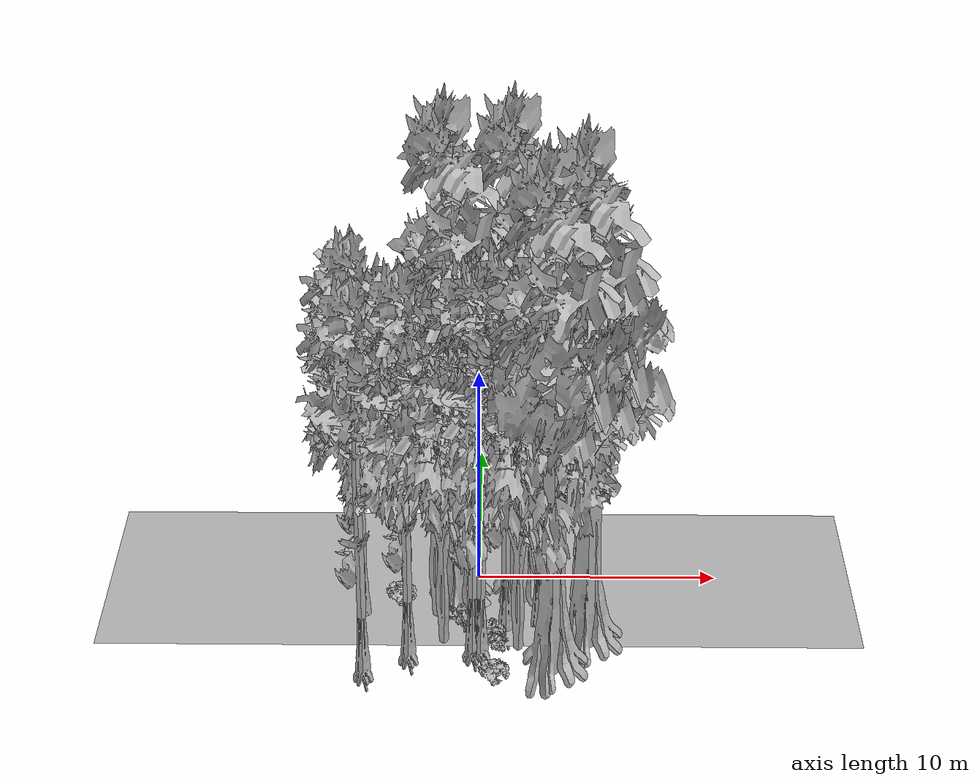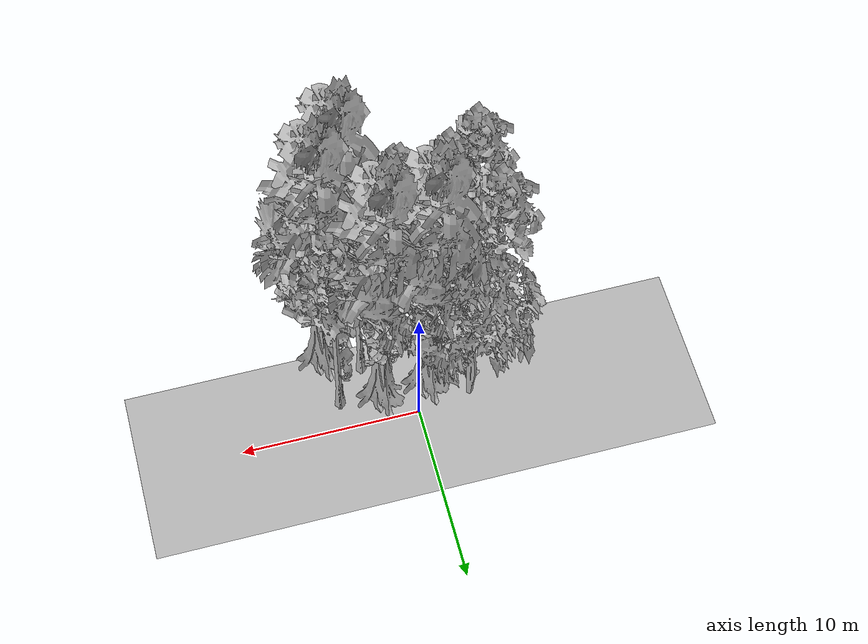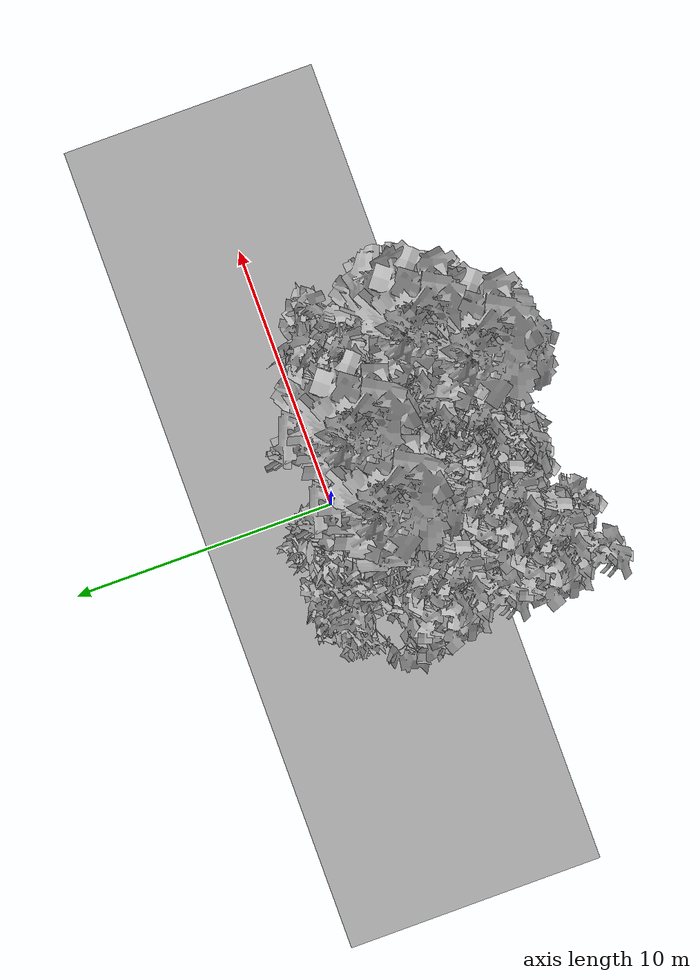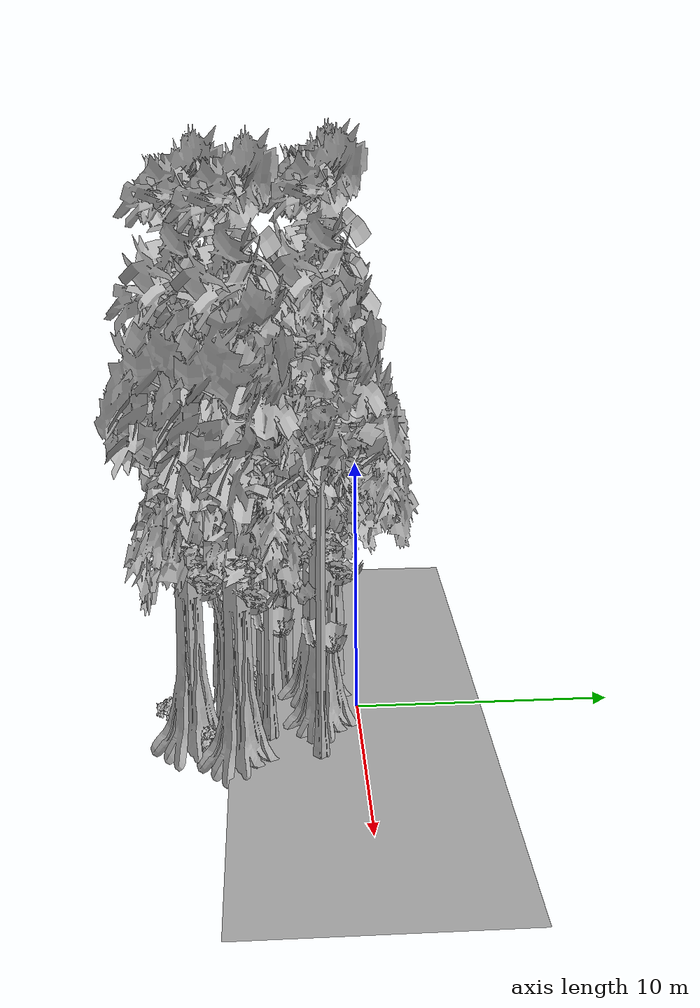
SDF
<sdf version="1.7">
 <world name="default">
  <model name="ground_plane">
   <static>1</static>
   <link name="link">
    <collision name="collision">
     <geometry><plane><normal>0 0 1</normal><size>100 100</size></plane></geometry>
     <surface><contact><ode><min_depth>0.01</min_depth><max_vel>0</max_vel></ode></contact></surface>
    </collision>
    <visual name="grass">
     <cast_shadows>0</cast_shadows>
     <geometry>
      <mesh>
       <scale>0.5814285714285714 0.18142857142857144 0.1</scale>
       <uri>file://grass_plane/meshes/grass_plane.dae</uri>
      </mesh>
     </geometry>
    </visual>
   </link>
  </model>
  <model name="Tree 1">
   <static>1</static>
   <pose>0.11113853436378918 -5.2022430370179435 0 1.57079 -0 0</pose>
   <link name="link">
    <collision name="collision">
     <geometry><mesh><scale>3.5 5 3.5</scale><uri>model://tree_9/meshes/tree_9.obj</uri></mesh></geometry>
    </collision>
    <visual name="visual">
     <geometry><mesh><scale>3.5 5 3.5</scale><uri>model://tree_9/meshes/tree_9.obj</uri></mesh></geometry>
    </visual>
   </link>
  </model>
  <model name="Tree 21">
   <static>1</static>
   <pose>1.1179065578854477 -3.695320356030459 0 1.57079 -0 0</pose>
   <link name="link">
    <collision name="collision">
     <geometry><mesh><scale>3.5 5 3.5</scale><uri>model://tree_9/meshes/tree_9.obj</uri></mesh></geometry>
    </collision>
    <visual name="visual">
     <geometry><mesh><scale>3.5 5 3.5</scale><uri>model://tree_9/meshes/tree_9.obj</uri></mesh></geometry>
    </visual>
   </link>
  </model>
  <model name="Tree 31">
   <static>1</static>
   <pose>-1.4957072366649413 -4.576129310586122 0 1.57079 -0 0</pose>
   <link name="link">
    <collision name="collision">
     <geometry><mesh><scale>3.5 5 3.5</scale><uri>model://tree_2/meshes/tree_2.obj</uri></mesh></geometry>
    </collision>
    <visual name="visual">
     <geometry><mesh><scale>3.5 5 3.5</scale><uri>model://tree_2/meshes/tree_2.obj</uri></mesh></geometry>
    </visual>
   </link>
  </model>
  <model name="Tree 40">
   <static>1</static>
   <pose>-4.594382148344302 -6.544546056844624 0 1.57079 -0 0</pose>
   <link name="link">
    <collision name="collision">
     <geometry><mesh><scale>3.5 5 3.5</scale><uri>model://tree_9/meshes/tree_9.obj</uri></mesh></geometry>
    </collision>
    <visual name="visual">
     <geometry><mesh><scale>3.5 5 3.5</scale><uri>model://tree_9/meshes/tree_9.obj</uri></mesh></geometry>
    </visual>
   </link>
  </model>
  <model name="Tree 60">
   <static>1</static>
   <pose>2.468616328200504 -3.4058697029659157 0 1.57079 -0 0</pose>
   <link name="link">
    <collision name="collision">
     <geometry><mesh><scale>3.5 5 3.5</scale><uri>model://tree_9/meshes/tree_9.obj</uri></mesh></geometry>
    </collision>
    <visual name="visual">
     <geometry><mesh><scale>3.5 5 3.5</scale><uri>model://tree_9/meshes/tree_9.obj</uri></mesh></geometry>
    </visual>
   </link>
  </model>
  <model name="Tree 116">
   <static>1</static>
   <pose>2.9401466995521304 -6.251154883107754 0 1.57079 -0 0</pose>
   <link name="link">
    <collision name="collision">
     <geometry><mesh><scale>3.5 5 3.5</scale><uri>model://tree_4/meshes/tree_4.obj</uri></mesh></geometry>
    </collision>
    <visual name="visual">
     <geometry><mesh><scale>3.5 5 3.5</scale><uri>model://tree_4/meshes/tree_4.obj</uri></mesh></geometry>
    </visual>
   </link>
  </model>
  <model name="Tree 225">
   <static>1</static>
   <pose>4.118263405063395 -1.53877164807154 0 1.57079 -0 0</pose>
   <link name="link">
    <collision name="collision">
     <geometry><mesh><scale>3.5 5 3.5</scale><uri>model://tree_9/meshes/tree_9.obj</uri></mesh></geometry>
    </collision>
    <visual name="visual">
     <geometry><mesh><scale>3.5 5 3.5</scale><uri>model://tree_9/meshes/tree_9.obj</uri></mesh></geometry>
    </visual>
   </link>
  </model>
  <model name="Tree 238">
   <static>1</static>
   <pose>-0.9402037900620002 -1.536551444049394 0 1.57079 -0 0</pose>
   <link name="link">
    <collision name="collision">
     <geometry><mesh><scale>3.5 5 3.5</scale><uri>model://tree_4/meshes/tree_4.obj</uri></mesh></geometry>
    </collision>
    <visual name="visual">
     <geometry><mesh><scale>3.5 5 3.5</scale><uri>model://tree_4/meshes/tree_4.obj</uri></mesh></geometry>
    </visual>
   </link>
  </model>
  <model name="Tree 260">
   <static>1</static>
   <pose>-4.779596616066996 -2.733682372760356 0 1.57079 -0 0</pose>
   <link name="link">
    <collision name="collision">
     <geometry><mesh><scale>3.5 5 3.5</scale><uri>model://tree_9/meshes/tree_9.obj</uri></mesh></geometry>
    </collision>
    <visual name="visual">
     <geometry><mesh><scale>3.5 5 3.5</scale><uri>model://tree_9/meshes/tree_9.obj</uri></mesh></geometry>
    </visual>
   </link>
  </model>
  <model name="Tree 263">
   <static>1</static>
   <pose>1.7168578653007032 -1.357126923520358 0 1.57079 -0 0</pose>
   <link name="link">
    <collision name="collision">
     <geometry><mesh><scale>3.5 5 3.5</scale><uri>model://tree_4/meshes/tree_4.obj</uri></mesh></geometry>
    </collision>
    <visual name="visual">
     <geometry><mesh><scale>3.5 5 3.5</scale><uri>model://tree_4/meshes/tree_4.obj</uri></mesh></geometry>
    </visual>
   </link>
  </model>
  <model name="Tree 299">
   <static>1</static>
   <pose>1.5363552865570327 -5.008770271259891 0 1.57079 -0 0</pose>
   <link name="link">
    <collision name="collision">
     <geometry><mesh><scale>3.5 5 3.5</scale><uri>model://tree_2/meshes/tree_2.obj</uri></mesh></geometry>
    </collision>
    <visual name="visual">
     <geometry><mesh><scale>3.5 5 3.5</scale><uri>model://tree_2/meshes/tree_2.obj</uri></mesh></geometry>
    </visual>
   </link>
  </model>
  <model name="Tree 306">
   <static>1</static>
   <pose>-2.8182048624685265 -5.439349991717718 0 1.57079 -0 0</pose>
   <link name="link">
    <collision name="collision">
     <geometry><mesh><scale>3.5 5 3.5</scale><uri>model://tree_9/meshes/tree_9.obj</uri></mesh></geometry>
    </collision>
    <visual name="visual">
     <geometry><mesh><scale>3.5 5 3.5</scale><uri>model://tree_9/meshes/tree_9.obj</uri></mesh></geometry>
    </visual>
   </link>
  </model>
  <model name="Tree 327">
   <static>1</static>
   <pose>4.390263808606427 -4.4721525745970006 0 1.57079 -0 0</pose>
   <link name="link">
    <collision name="collision">
     <geometry><mesh><scale>3.5 5 3.5</scale><uri>model://tree_4/meshes/tree_4.obj</uri></mesh></geometry>
    </collision>
    <visual name="visual">
     <geometry><mesh><scale>3.5 5 3.5</scale><uri>model://tree_4/meshes/tree_4.obj</uri></mesh></geometry>
    </visual>
   </link>
  </model>
  <model name="Tree 355">
   <static>1</static>
   <pose>-3.1729264625421862 -0.5917542081228042 0 1.57079 -0 0</pose>
   <link name="link">
    <collision name="collision">
     <geometry><mesh><scale>3.5 5 3.5</scale><uri>model://tree_2/meshes/tree_2.obj</uri></mesh></geometry>
    </collision>
    <visual name="visual">
     <geometry><mesh><scale>3.5 5 3.5</scale><uri>model://tree_2/meshes/tree_2.obj</uri></mesh></geometry>
    </visual>
   </link>
  </model>
  <model name="Tree 383">
   <static>1</static>
   <pose>-1.8211082080241994 -2.7110860202222025 0 1.57079 -0 0</pose>
   <link name="link">
    <collision name="collision">
     <geometry><mesh><scale>3.5 5 3.5</scale><uri>model://tree_2/meshes/tree_2.obj</uri></mesh></geometry>
    </collision>
    <visual name="visual">
     <geometry><mesh><scale>3.5 5 3.5</scale><uri>model://tree_2/meshes/tree_2.obj</uri></mesh></geometry>
    </visual>
   </link>
  </model>
  <model name="Tree 417">
   <static>1</static>
   <pose>-0.22225132501743872 -5.182352710534595 0 1.57079 -0 0</pose>
   <link name="link">
    <collision name="collision">
     <geometry><mesh><scale>3.5 5 3.5</scale><uri>model://tree_9/meshes/tree_9.obj</uri></mesh></geometry>
    </collision>
    <visual name="visual">
     <geometry><mesh><scale>3.5 5 3.5</scale><uri>model://tree_9/meshes/tree_9.obj</uri></mesh></geometry>
    </visual>
   </link>
  </model>
  <model name="Bush 107">
   <static>1</static>
   <pose>3.3646406170308083 -5.781958765160979 0 1.57079 -0 0</pose>
   <link name="link">
    <collision name="collision">
     <geometry><mesh><scale>2 2 2</scale><uri>model://bush_3/meshes/bush_3.obj</uri></mesh></geometry>
     <surface><contact><collide_without_contact>false</collide_without_contact></contact></surface>
    </collision>
    <visual name="visual">
     <geometry><mesh><scale>2 2 2</scale><uri>model://bush_3/meshes/bush_3.obj</uri></mesh></geometry>
    </visual>
   </link>
  </model>
  <model name="Bush 121">
   <static>1</static>
   <pose>0.6983480162503426 -7.1079363830817135 0 1.57079 -0 0</pose>
   <link name="link">
    <collision name="collision">
     <geometry><mesh><scale>2 2 2</scale><uri>model://bush_3/meshes/bush_3.obj</uri></mesh></geometry>
     <surface><contact><collide_without_contact>false</collide_without_contact></contact></surface>
    </collision>
    <visual name="visual">
     <geometry><mesh><scale>2 2 2</scale><uri>model://bush_3/meshes/bush_3.obj</uri></mesh></geometry>
    </visual>
   </link>
  </model>
  <model name="Bush 194">
   <static>1</static>
   <pose>-3.194972490454724 -1.7536469752405708 0 1.57079 -0 0</pose>
   <link name="link">
    <collision name="collision">
     <geometry><mesh><scale>2 2 2</scale><uri>model://bush_3/meshes/bush_3.obj</uri></mesh></geometry>
     <surface><contact><collide_without_contact>false</collide_without_contact></contact></surface>
    </collision>
    <visual name="visual">
     <geometry><mesh><scale>2 2 2</scale><uri>model://bush_3/meshes/bush_3.obj</uri></mesh></geometry>
    </visual>
   </link>
  </model>
  <model name="Bush 232">
   <static>1</static>
   <pose>0.7178363146990208 -3.8019885782171947 0 1.57079 -0 0</pose>
   <link name="link">
    <collision name="collision">
     <geometry><mesh><scale>2 2 2</scale><uri>model://bush_2/meshes/bush_2.obj</uri></mesh></geometry>
     <surface><contact><collide_without_contact>false</collide_without_contact></contact></surface>
    </collision>
    <visual name="visual">
     <geometry><mesh><scale>2 2 2</scale><uri>model://bush_2/meshes/bush_2.obj</uri></mesh></geometry>
    </visual>
   </link>
  </model>
  <model name="Bush 284">
   <static>1</static>
   <pose>0.6631919573804126 -4.7385473091506185 0 1.57079 -0 0</pose>
   <link name="link">
    <collision name="collision">
     <geometry><mesh><scale>2 2 2</scale><uri>model://bush_2/meshes/bush_2.obj</uri></mesh></geometry>
     <surface><contact><collide_without_contact>false</collide_without_contact></contact></surface>
    </collision>
    <visual name="visual">
     <geometry><mesh><scale>2 2 2</scale><uri>model://bush_2/meshes/bush_2.obj</uri></mesh></geometry>
    </visual>
   </link>
  </model>
  <model name="Bush 317">
   <static>1</static>
   <pose>-0.561341205607718 -3.9547951408496615 0 1.57079 -0 0</pose>
   <link name="link">
    <collision name="collision">
     <geometry><mesh><scale>2 2 2</scale><uri>model://bush_0/meshes/bush_0.obj</uri></mesh></geometry>
     <surface><contact><collide_without_contact>false</collide_without_contact></contact></surface>
    </collision>
    <visual name="visual">
     <geometry><mesh><scale>2 2 2</scale><uri>model://bush_0/meshes/bush_0.obj</uri></mesh></geometry>
    </visual>
   </link>
  </model>
 </world>
</sdf>
